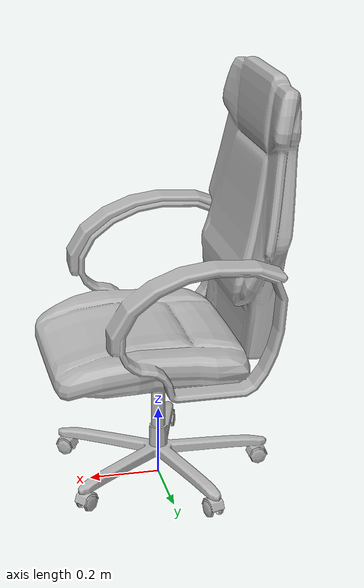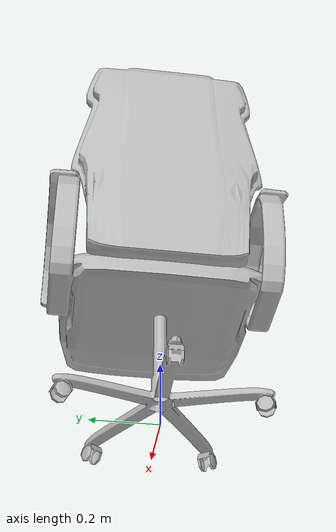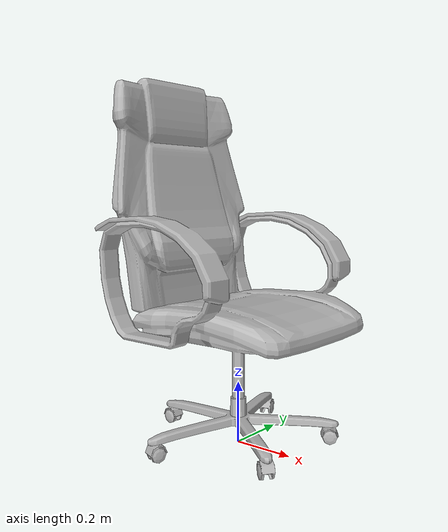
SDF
<?xml version='1.0'?>
<sdf version='1.4'>
  <model name='s__574'>
    <pose>0 0 0 0 0 0</pose>
    <static>true</static>
    <link name='link'>
      <collision name='collision'>
        <pose>0 0 0 0 0 0</pose>
        <geometry>
          <box>
            <size>0.649999 0.74 2</size>
          </box>
        </geometry>
      </collision>
      <visual name='visual'>
        <pose>0 0 0 0 0 0</pose>
        <geometry>
          <mesh><uri>model://s__574/s__574.dae</uri></mesh>
        </geometry>
      </visual>
    </link>
  </model>
</sdf>
